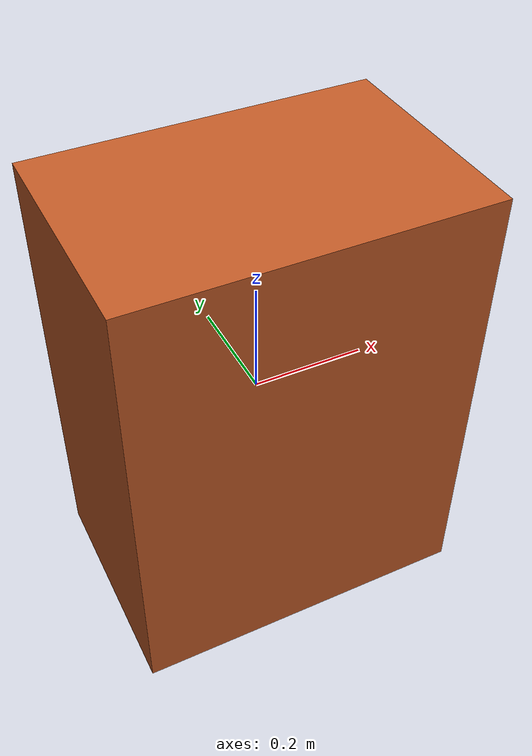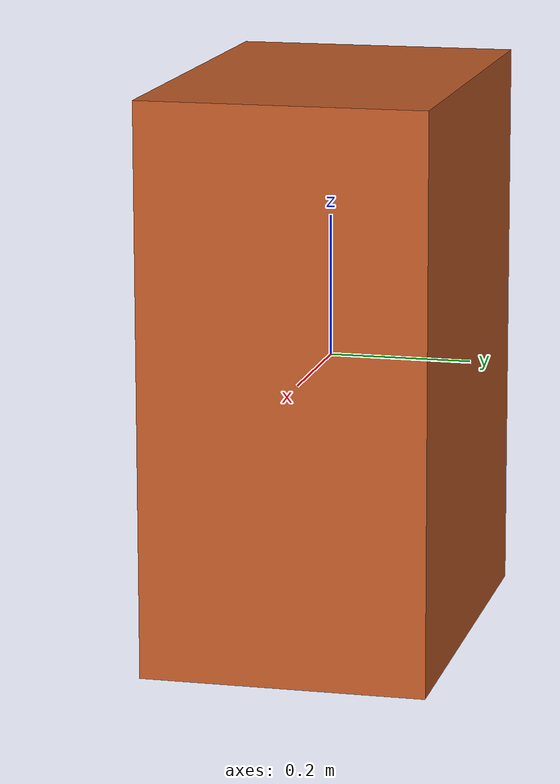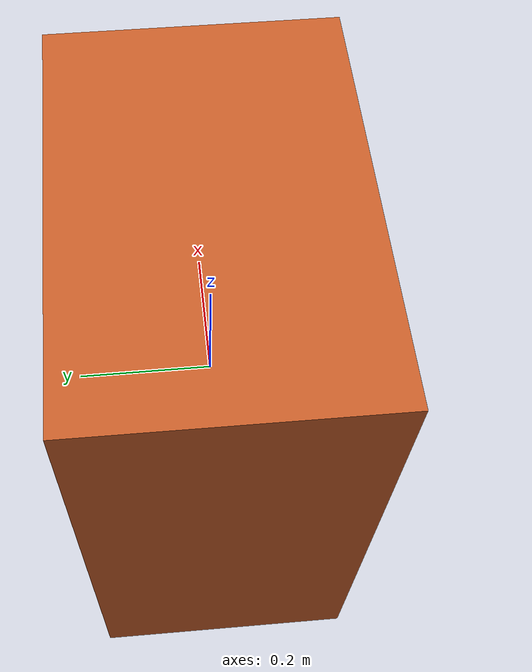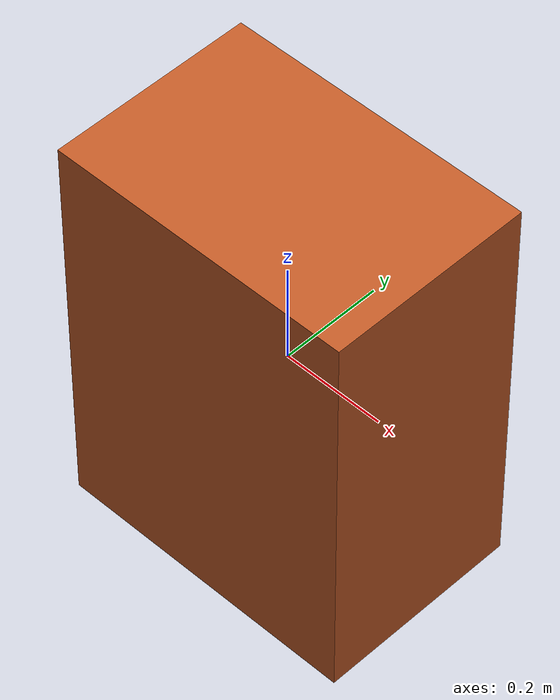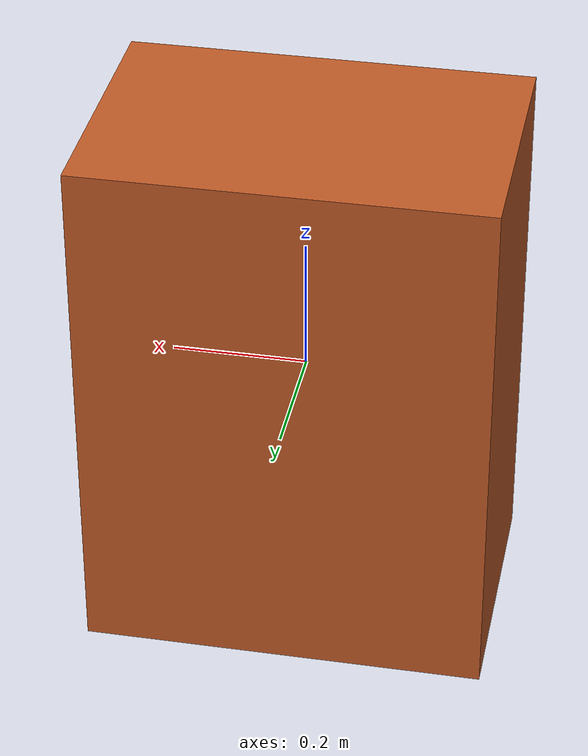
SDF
<?xml version="1.0"?>
<sdf version="1.10">
  <model name="obstacle">
    <static>true</static>
    <link name="link">
      <collision name="collision">
        <geometry><box><size>0.6 0.4 0.8</size></box></geometry>
      </collision>
      <visual name="visual">
        <geometry><box><size>0.6 0.4 0.8</size></box></geometry>
        <material>
          <ambient>0.55 0.25 0.12 1</ambient>
          <diffuse>0.75 0.35 0.15 1</diffuse>
        </material>
      </visual>
    </link>
  </model>
</sdf>
